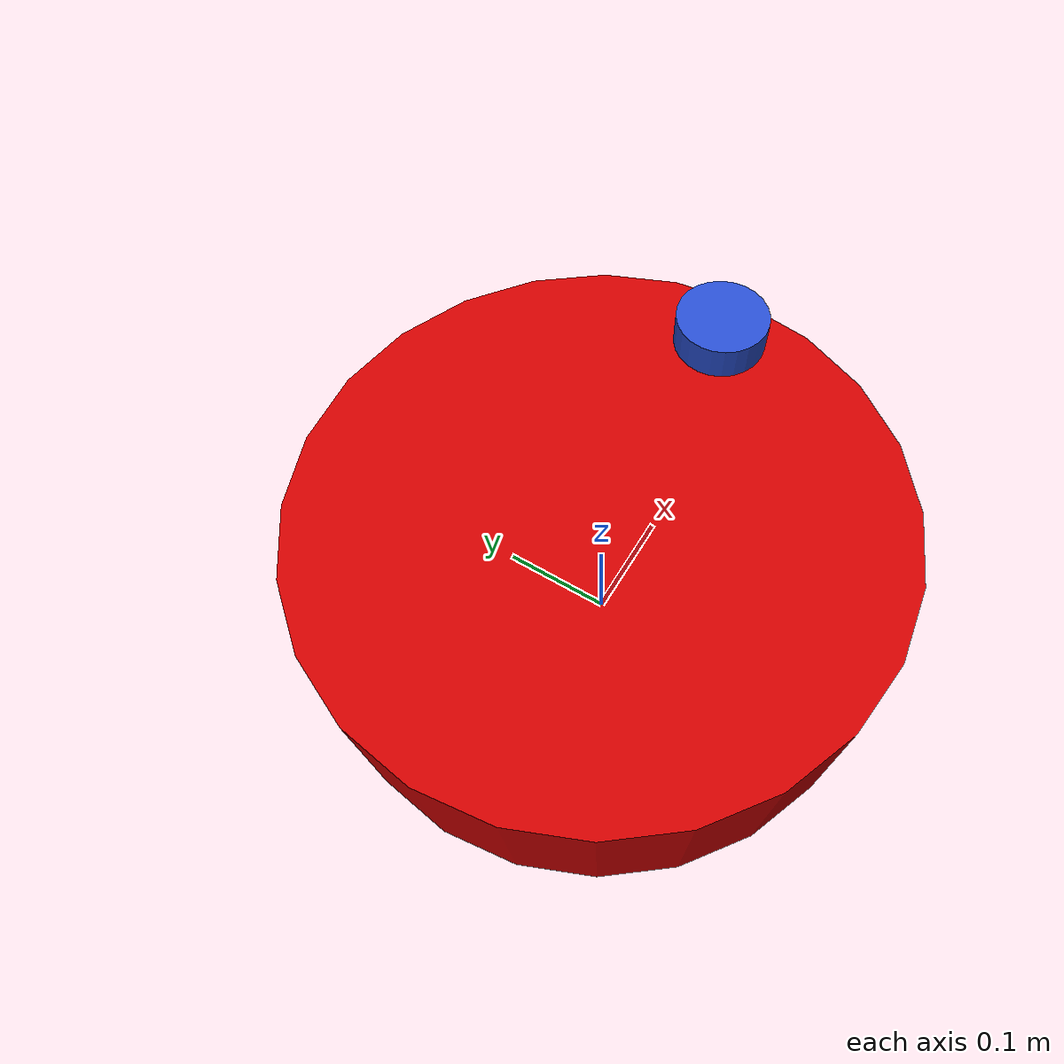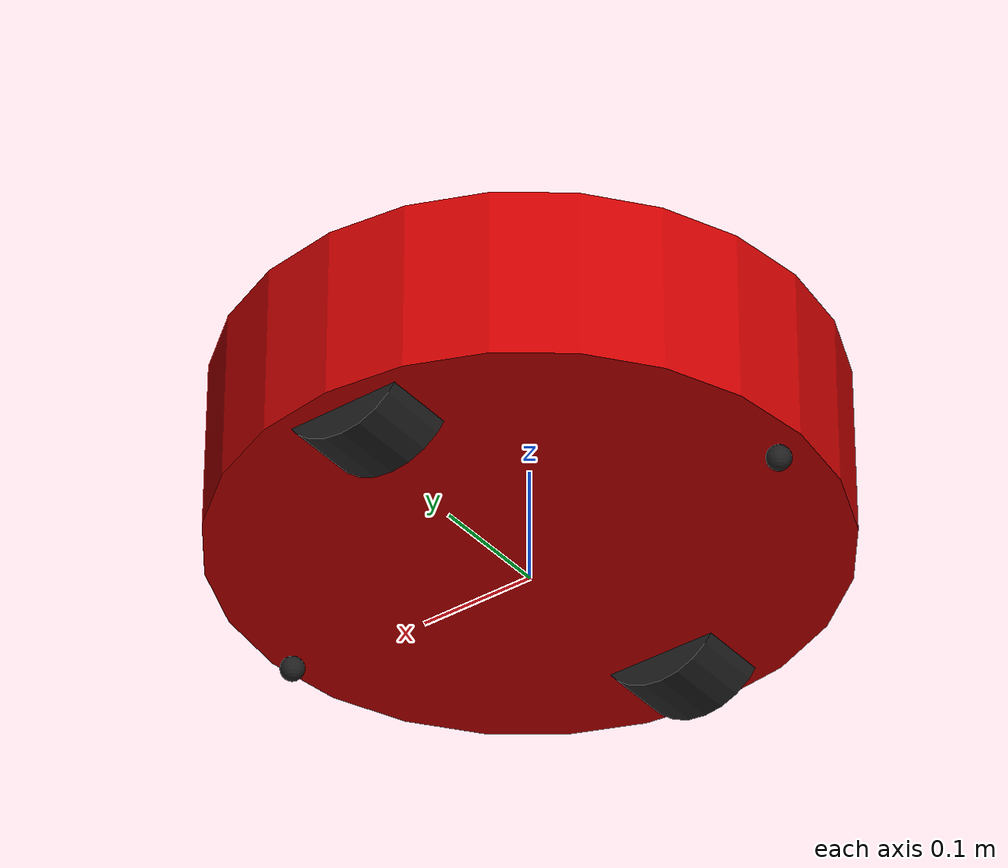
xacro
<?xml version="1.0"?>
<robot name="robot_manipulator" xmlns:xacro="http://ros.org/wiki/xacro">

	<xacro:include filename="$(find robot_manipulator)/urdf/wheels.xacro"/>
	<xacro:include filename="$(find robot_manipulator)/urdf/caster_wheels.xacro"/>
	<xacro:include filename="$(find robot_manipulator)/urdf/lidar.xacro"/>

	<link name="base_footprint" />

	<joint name="base_joint" type="fixed">
    <parent link="base_footprint" />
    <child link="base_link" />
    <origin xyz="0 0 0.1" rpy="0 0 0" />
  </joint>

	<link name="base_link" >
		<visual>
			<origin rpy="0 0 0" xyz="0 0 0" />
			<geometry>
				<cylinder length="0.15" radius="0.25" />
			</geometry>
			<material name="red">
				<color rgba="0.8 0.0 0.0 1.0" />
			</material>
		</visual>
		<collision>
			<origin rpy="0 0 0" xyz="0 0 0" />
			<geometry>
				<cylinder length="0.15" radius="0.2" />
			</geometry>
		</collision>
		<inertial>
			<mass value="15.0" />
			<origin xyz="0.0 0 0.0" />
			<inertia ixx="2.3" ixy="0.0" ixz="0.0" iyy="1.0" iyz="0.0" izz="1.5" />
		</inertial>
	</link>

	<gazebo reference="base_link">
		<selfCollide>false</selfCollide>
		<material value="Gazebo/Red"/>
    <turnGravityOff>false</turnGravityOff>
  </gazebo>

	<!-- caster wheels -->
	<xacro:caster_wheel name="back" parent="base_link" >
		<origin xyz="-0.23 0 -0.088" rpy="0 0 0" />
	</xacro:caster_wheel>
	<xacro:caster_wheel name="front" parent="base_link" >
		<origin xyz="0.23 0 -0.088" rpy="0 0 0" />
	</xacro:caster_wheel>

	<!-- wheels -->
	<xacro:wheel name="left" parent="base_link" >
		<origin xyz="0 0.2 -0.04" rpy="0 0 0" />
	</xacro:wheel>
	<xacro:wheel name="right" parent="base_link" >
		<origin xyz="0 -0.2 -0.04" rpy="0 0 0" />
	</xacro:wheel>

	<gazebo>
		<plugin name="base_diff_drive" filename="libgazebo_ros_diff_drive.so">
      <ros>
      </ros>
			<update_rate>100.0</update_rate>
			<left_joint>wheel_left_joint</left_joint>
			<right_joint>wheel_right_joint</right_joint>
			<wheel_separation>0.4</wheel_separation>
			<wheel_diameter>${2*wheel_radius}</wheel_diameter>
			<max_wheel_torque>100</max_wheel_torque>
			<max_wheel_acceleration>200</max_wheel_acceleration>
			<publish_odom>true</publish_odom>
			<publish_odom_tf>true</publish_odom_tf>
			<publish_wheel_tf>false</publish_wheel_tf>
      <odometry_topic>odom</odometry_topic>
			<odometry_frame>odom</odometry_frame>
			<robot_base_frame>base_footprint</robot_base_frame>
		</plugin>
	</gazebo>

	<!-- Sensors -->
	<xacro:lidar_sensor name="lidar" parent="base_link" >
		<origin xyz="0.2 0 0.075" rpy="0 0 0"/>
	</xacro:lidar_sensor>

</robot>

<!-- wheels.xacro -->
<robot name="wheel" xmlns:xacro="http://ros.org/wiki/xacro">

	<xacro:property name="M_PI_2" value="1.570796327"/>
	<xacro:property name="wheel_height" value="0.06"/>
	<xacro:property name="wheel_radius" value="0.06"/>
	<xacro:property name="wheel_mass" value="1.5"/>

  <!-- Wheels -->
  <xacro:macro name="cylinder_inertia" params="m r h">
    <inertia  ixx="${m*(3*r*r+h*h)/12}" ixy = "0" ixz = "0"
              iyy="${m*(3*r*r+h*h)/12}" iyz = "0"
              izz="${m*r*r/2}"/>
  </xacro:macro>

  <xacro:macro name="wheel" params="name parent *origin" >
    <link name="wheel_${name}">
      <visual>
        <origin xyz="0 0 0" rpy="${M_PI_2} 0 0"/>
        <geometry>
          <cylinder length="${wheel_height}" radius="${wheel_radius}"/>
        </geometry>
        <material name="black"/>
      </visual>
      <collision>
        <origin xyz="0 0 0" rpy="${M_PI_2} 0 0"/>
        <geometry>
          <cylinder length="${wheel_height}" radius="${wheel_radius}"/>
        </geometry>
      </collision>
      <inertial>
        <mass value="${wheel_mass}"/>
        <origin xyz="0 0 0"/>
        <xacro:cylinder_inertia  m="${wheel_mass}" r="${wheel_radius}" h="${wheel_height}"/>
      </inertial>
    </link>

    <gazebo reference="wheel_${name}">
      <material>Gazebo/Black</material>
      <turnGravityOff>false</turnGravityOff>
			<collision name="wheel_${name}_collision">
        <surface>
          <contact>
            <ode>
              <soft_cfm>0</soft_cfm>
              <soft_erp>0.2</soft_erp>
              <kp>100000</kp>
              <kd>0.1</kd>
              <max_vel>20</max_vel>
              <min_depth>0.001</min_depth>
            </ode>
          </contact>
        </surface>
      </collision>
    </gazebo>

    <joint name="wheel_${name}_joint" type="revolute">
      <parent link="${parent}"/>
      <child link="wheel_${name}"/>
      <xacro:insert_block name="origin"/>
      <axis xyz="0 1 0"/>
      <limit lower="-1e+16" upper="1e+16" effort="20.0" velocity="5.0"/>
      <dynamics damping="0.4" friction="0.2"/>
    </joint>

  </xacro:macro>

</robot>

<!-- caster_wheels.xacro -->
<robot name="caster_wheel" xmlns:xacro="http://ros.org/wiki/xacro">

  <xacro:macro name="caster_wheel" params="name parent *origin" >
		<joint name="caster_${name}_joint" type="fixed">
			<parent link="${parent}"/>
			<child link="caster_${name}_link"/>
      <xacro:insert_block name="origin"/>
		</joint>

		<link name="caster_${name}_link">
			<visual>
				<geometry>
					<sphere radius="0.01" />
				</geometry>
			</visual>
			<collision>
				<geometry>
					<sphere radius="0.01" />
				</geometry>
			</collision>
			<inertial>
				<mass value="0.001" />
				<origin xyz="0.0 0 0.0" />
				<inertia ixx="0.00001" ixy="0.0" ixz="0.0" iyy="0.00001" iyz="0.0" izz="0.00001" />
			</inertial>
		</link>

		<gazebo reference="caster_${name}_link">
			<material>Gazebo/Black</material>
			<turnGravityOff>false</turnGravityOff>
		</gazebo>
  </xacro:macro>

</robot>

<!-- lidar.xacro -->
<robot xmlns:xacro="http://ros.org/wiki/xacro">

  <xacro:macro name="lidar_sensor" params="name parent *origin">
    <!-- z_offset: distance between base plate and laser center (= center of mesh) -->
    <link name="${name}_mount_link">
      <inertial>
        <mass value="0.001" />
        <origin xyz="0 0 0" />
        <inertia ixx="0.000001" ixy="0.0" ixz="0.0"
          iyy="0.000001" iyz="0.0" izz="0.000001" />
      </inertial>
    </link>

    <joint name="${name}_joint" type="fixed">
      <parent link="${name}_mount_link" />
      <child link="${name}" />
      <origin rpy="0 0 0" xyz="0 0 0.02"/>
    </joint>

    <link name="${name}">
      <visual>
        <origin xyz="0 0 -0.005" />
        <geometry>
					<cylinder length="0.03" radius="0.04" />
        </geometry>
        <material name="blue"/>
      </visual>
      <collision>
        <origin xyz="0 0 -0.005" />
        <geometry>
					<cylinder length="0.03" radius="0.04" />
        </geometry>
      </collision>
      <inertial>
        <mass value="0.25" />
        <origin xyz="0 0 -0.026" />
      	<inertia ixx="0.01548332714" ixy="0.0" ixz="0.0" iyy="0.01548332714" iyz="0.0" izz="0.00014999993999999998"/>
      </inertial>
    </link>

    <joint name="${name}_mount_joint" type="fixed">
      <parent link="${parent}"/>
      <child link="${name}_mount_link"/>
      <xacro:insert_block name="origin"/>
    </joint>

    <gazebo reference="${name}">
      <turnGravityOff>false</turnGravityOff>
      <material value="Gazebo/Blue" />
      <sensor type="ray" name="${name}">
        <topic>scan</topic>
        <always_on>true</always_on>
        <update_rate>30</update_rate>
        <pose>0 0 0 0 0 0</pose>
        <visualize>true</visualize>
        <ray>
          <scan>
            <horizontal>
              <samples>720</samples>
              <resolution>1</resolution>
              <min_angle>-2.357</min_angle>
              <max_angle>2.357</max_angle>
            </horizontal>
          </scan>
          <range>
            <min>0.05</min>
            <max>4</max>
            <resolution>0.01</resolution>
          </range>
          <noise>
            <type>gaussian</type>
            <mean>0</mean>
            <stddev>0.006</stddev>
          </noise>
        </ray>
        <plugin name="gazebo_ros_${name}_controller" filename="libgazebo_ros_ray_sensor.so">
          <ros>
            <remapping>~/out:=scan</remapping>
          </ros>
          <frame_name>${name}</frame_name>
          <output_type>sensor_msgs/LaserScan</output_type>
        </plugin>
      </sensor>
    </gazebo>

    <gazebo reference="${name}_mount_link">
      <turnGravityOff>false</turnGravityOff>
    </gazebo>

  </xacro:macro>

</robot>
